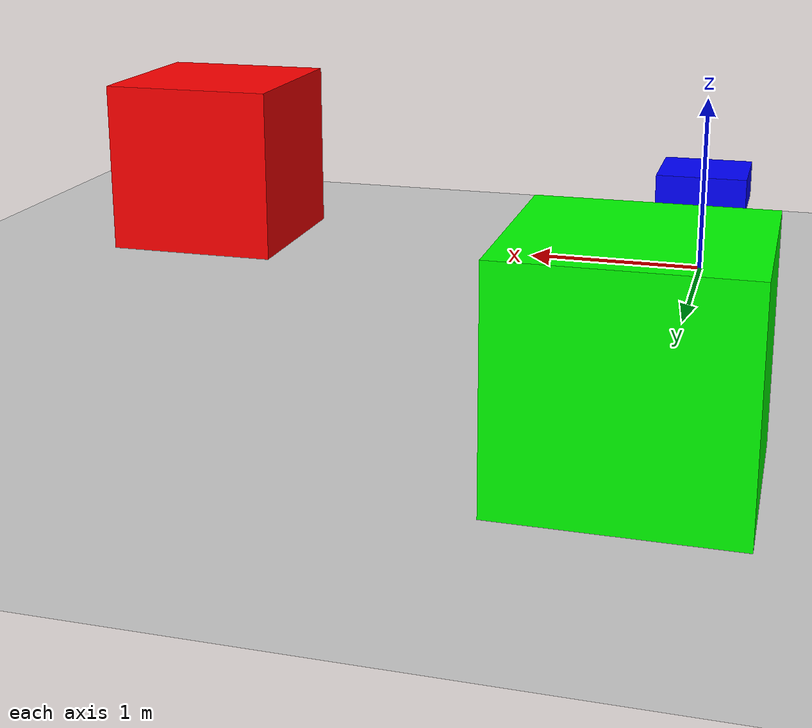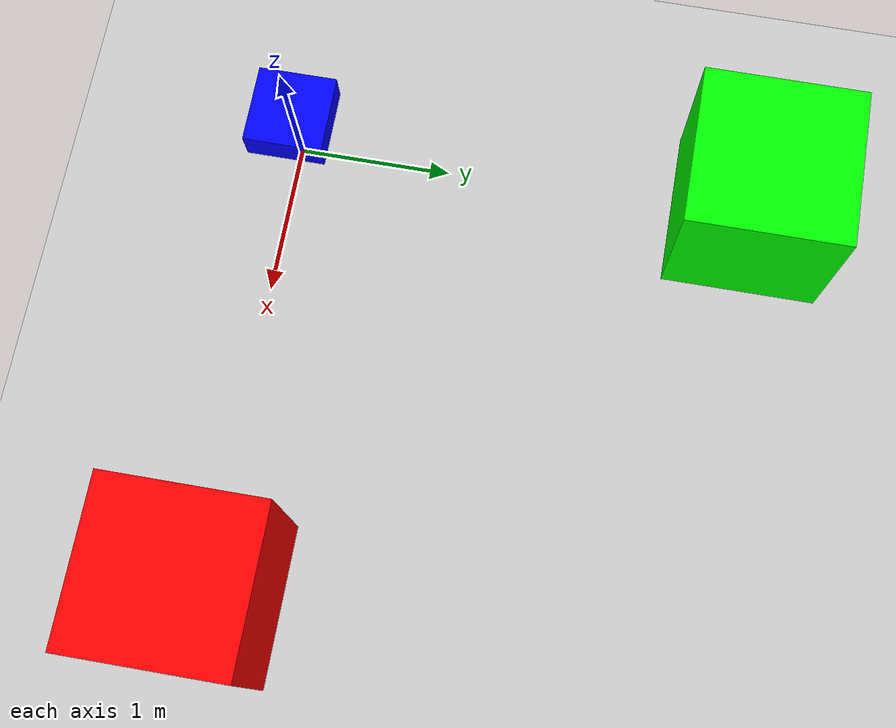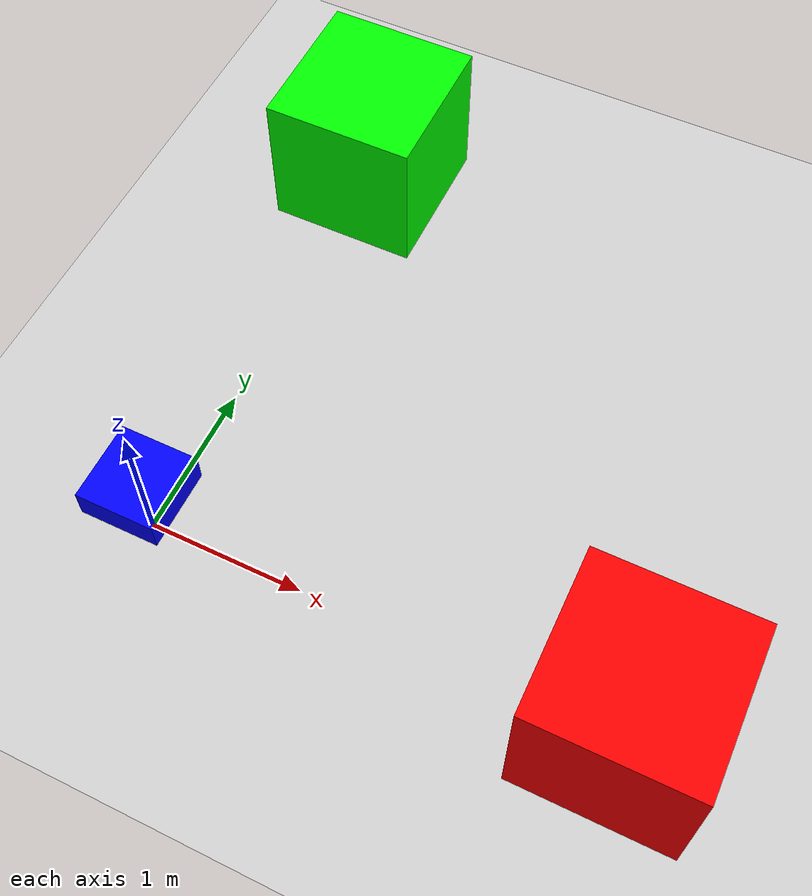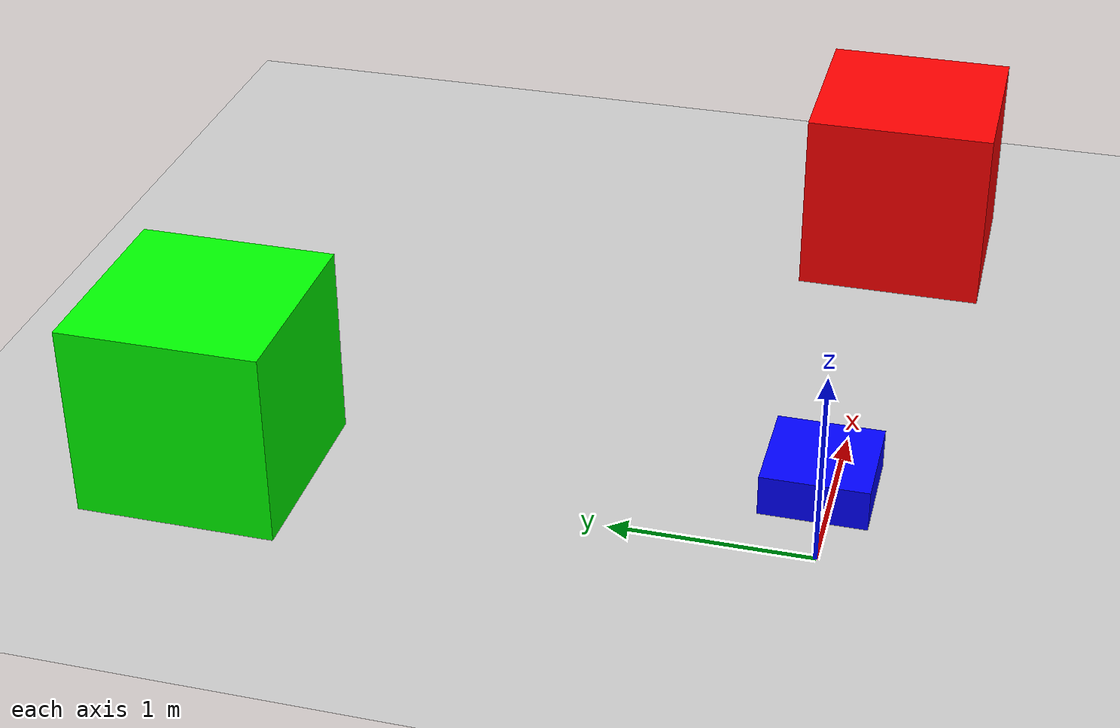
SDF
<?xml version="1.0" ?>
<sdf version="1.6">
  <world name="lidar_test">
    <!-- Physics -->
    <plugin filename="libignition-gazebo-physics-system.so"
            name="ignition::gazebo::systems::Physics">
    </plugin>

    <!-- Sensors -->
    <plugin filename="libignition-gazebo-sensors-system.so"
            name="ignition::gazebo::systems::Sensors">
      <render_engine>ogre2</render_engine>
    </plugin>

    <!-- User Commands (for GUI) -->
    <plugin filename="libignition-gazebo-user-commands-system.so"
            name="ignition::gazebo::systems::UserCommands">
    </plugin>

    <!-- Scene broadcaster -->
    <plugin filename="libignition-gazebo-scene-broadcaster-system.so"
            name="ignition::gazebo::systems::SceneBroadcaster">
    </plugin>

    <!-- Physics settings -->
    <physics name="1ms" type="ignored">
      <max_step_size>0.001</max_step_size>
      <real_time_factor>1.0</real_time_factor>
    </physics>

    <!-- Lighting -->
    <light type="directional" name="sun">
      <cast_shadows>true</cast_shadows>
      <pose>0 0 10 0 0 0</pose>
      <diffuse>0.8 0.8 0.8 1</diffuse>
      <specular>0.2 0.2 0.2 1</specular>
      <attenuation>
        <range>1000</range>
        <constant>0.9</constant>
        <linear>0.01</linear>
        <quadratic>0.001</quadratic>
      </attenuation>
      <direction>-0.5 0.1 -0.9</direction>
    </light>

    <!-- Ground -->
    <model name="ground_plane">
      <static>true</static>
      <link name="link">
        <collision name="collision">
          <geometry>
            <plane>
              <normal>0 0 1</normal>
            </plane>
          </geometry>
        </collision>
        <visual name="visual">
          <geometry>
            <plane>
              <normal>0 0 1</normal>
              <size>100 100</size>
            </plane>
          </geometry>
          <material>
            <ambient>0.8 0.8 0.8 1</ambient>
            <diffuse>0.8 0.8 0.8 1</diffuse>
            <specular>0.8 0.8 0.8 1</specular>
          </material>
        </visual>
      </link>
    </model>

    <!-- Simple robot with working lidar -->
    <model name="lidar_robot">
      <pose>0 0 0.5 0 0 0</pose>

      <!-- Main body -->
      <link name="base_link">
        <inertial>
          <mass>1.0</mass>
          <inertia>
            <ixx>0.083</ixx>
            <ixy>0.0</ixy>
            <ixz>0.0</ixz>
            <iyy>0.083</iyy>
            <iyz>0.0</iyz>
            <izz>0.083</izz>
          </inertia>
        </inertial>
        <collision name="collision">
          <geometry>
            <box>
              <size>0.5 0.5 0.2</size>
            </box>
          </geometry>
        </collision>
        <visual name="visual">
          <geometry>
            <box>
              <size>0.5 0.5 0.2</size>
            </box>
          </geometry>
          <material>
            <ambient>0.0 0.0 1.0 1</ambient>
            <diffuse>0.0 0.0 1.0 1</diffuse>
          </material>
        </visual>

        <!-- Lidar sensor directly in the link (using ray instead of gpu_lidar) -->
        <sensor name="lidar_sensor" type="ray">
          <pose>0 0 0.2 0 0 0</pose>
          <topic>lidar</topic>
          <update_rate>10</update_rate>
          <always_on>1</always_on>
          <visualize>true</visualize>
          <ray>
            <scan>
              <horizontal>
                <samples>360</samples>
                <resolution>1</resolution>
                <min_angle>-3.14159</min_angle>
                <max_angle>3.14159</max_angle>
              </horizontal>
            </scan>
            <range>
              <min>0.08</min>
              <max>10.0</max>
              <resolution>0.01</resolution>
            </range>
            <noise>
              <type>gaussian</type>
              <mean>0.0</mean>
              <stddev>0.01</stddev>
            </noise>
          </ray>
        </sensor>
      </link>
    </model>

    <!-- Some objects to detect -->
    <model name="box1">
      <pose>3 0 0.5 0 0 0</pose>
      <static>true</static>
      <link name="link">
        <collision name="collision">
          <geometry>
            <box>
              <size>1 1 1</size>
            </box>
          </geometry>
        </collision>
        <visual name="visual">
          <geometry>
            <box>
              <size>1 1 1</size>
            </box>
          </geometry>
          <material>
            <ambient>1.0 0.0 0.0 1</ambient>
            <diffuse>1.0 0.0 0.0 1</diffuse>
          </material>
        </visual>
      </link>
    </model>

    <model name="box2">
      <pose>0 3 0.5 0 0 0</pose>
      <static>true</static>
      <link name="link">
        <collision name="collision">
          <geometry>
            <box>
              <size>1 1 1</size>
            </box>
          </geometry>
        </collision>
        <visual name="visual">
          <geometry>
            <box>
              <size>1 1 1</size>
            </box>
          </geometry>
          <material>
            <ambient>0.0 1.0 0.0 1</ambient>
            <diffuse>0.0 1.0 0.0 1</diffuse>
          </material>
        </visual>
      </link>
    </model>

  </world>
</sdf>
